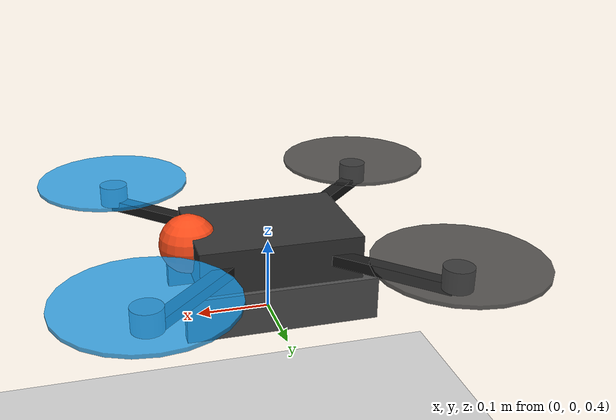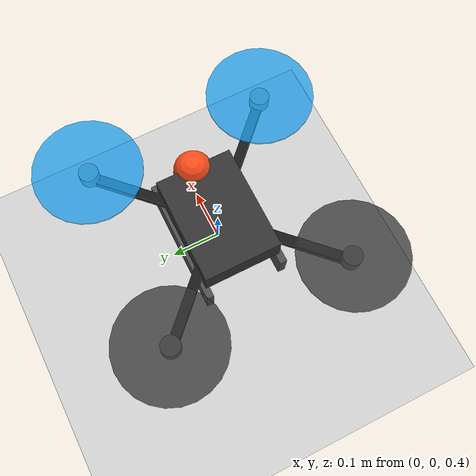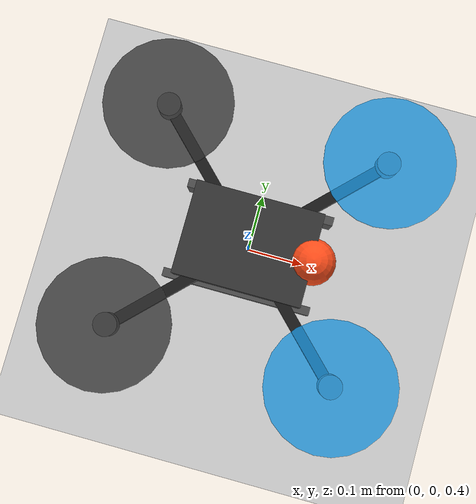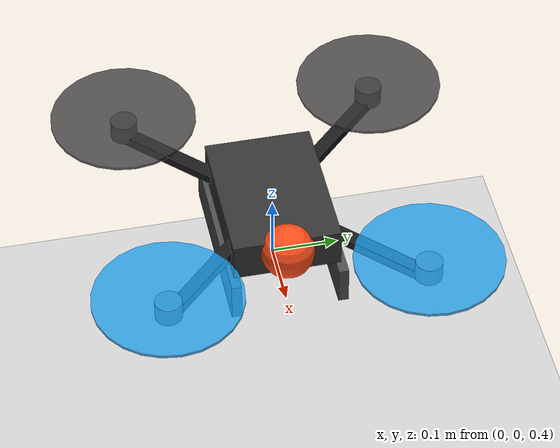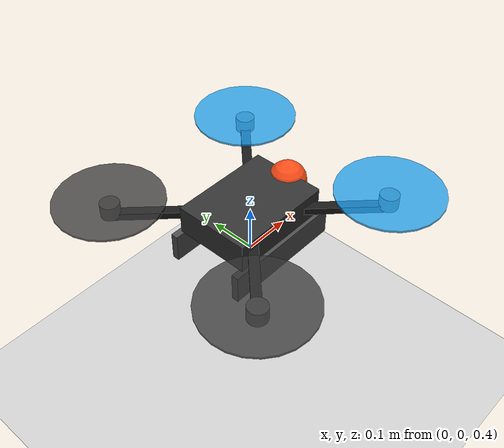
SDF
<?xml version="1.0" ?>
<sdf version="1.10">
  <world name="drone_world">

    <plugin filename="gz-sim-physics-system" name="gz::sim::systems::Physics"/>
    <plugin filename="gz-sim-user-commands-system" name="gz::sim::systems::UserCommands"/>
    <plugin filename="gz-sim-scene-broadcaster-system" name="gz::sim::systems::SceneBroadcaster"/>

    <light type="directional" name="sun">
      <cast_shadows>true</cast_shadows>
      <pose>0 0 10 0 0 0</pose>
      <diffuse>0.8 0.8 0.8 1</diffuse>
      <specular>0.2 0.2 0.2 1</specular>
      <direction>-0.5 0.1 -0.9</direction>
    </light>

    <model name="ground_plane">
      <static>true</static>
      <link name="link">
        <collision name="collision">
          <geometry><plane><normal>0 0 1</normal><size>100 100</size></plane></geometry>
        </collision>
        <visual name="visual">
          <geometry><plane><normal>0 0 1</normal><size>100 100</size></plane></geometry>
          <material><ambient>0.8 0.8 0.8 1</ambient><diffuse>0.8 0.8 0.8 1</diffuse></material>
        </visual>
      </link>
    </model>

    <!-- 사실적인 디테일의 쿼드콥터 드론 모델 -->
    <model name="quadcopter">
      <pose>0 0 0.5 0 0 0</pose>

      <link name="base_link">
        <gravity>false</gravity>
        <inertial>
          <mass>1.0</mass>
          <inertia>
            <ixx>0.01</ixx><ixy>0</ixy><ixz>0</ixz>
            <iyy>0.01</iyy><iyz>0</iyz>
            <izz>0.02</izz>
          </inertia>
        </inertial>

        <!-- 1. 중앙 몸체 -->
        <visual name="body">
          <pose>0 0 0 0 0 0</pose>
          <geometry><box><size>0.22 0.16 0.06</size></box></geometry>
          <material><ambient>0.15 0.15 0.15 1</ambient><diffuse>0.2 0.2 0.2 1</diffuse></material>
        </visual>
        <collision name="collision">
          <geometry><box><size>0.45 0.45 0.15</size></box></geometry>
        </collision>

        <!-- 2. 전방 주황색 노즈/카메라 (앞방향 표시) -->
        <visual name="head">
          <pose>0.11 0 0.01 0 0 0</pose>
          <geometry><sphere><radius>0.04</radius></sphere></geometry>
          <material><ambient>0.9 0.2 0.1 1</ambient><diffuse>1.0 0.3 0.1 1</diffuse></material>
        </visual>

        <!-- 3. X자 드론 프레임 암 -->
        <visual name="arm_fr">
          <pose>0.11 -0.11 0 0 0 -0.785</pose>
          <geometry><box><size>0.22 0.02 0.015</size></box></geometry>
          <material><ambient>0.1 0.1 0.1 1</ambient><diffuse>0.1 0.1 0.1 1</diffuse></material>
        </visual>
        <visual name="arm_fl">
          <pose>0.11 0.11 0 0 0 0.785</pose>
          <geometry><box><size>0.22 0.02 0.015</size></box></geometry>
          <material><ambient>0.1 0.1 0.1 1</ambient><diffuse>0.1 0.1 0.1 1</diffuse></material>
        </visual>
        <visual name="arm_rr">
          <pose>-0.11 -0.11 0 0 0 0.785</pose>
          <geometry><box><size>0.22 0.02 0.015</size></box></geometry>
          <material><ambient>0.1 0.1 0.1 1</ambient><diffuse>0.1 0.1 0.1 1</diffuse></material>
        </visual>
        <visual name="arm_rl">
          <pose>-0.11 0.11 0 0 0 -0.785</pose>
          <geometry><box><size>0.22 0.02 0.015</size></box></geometry>
          <material><ambient>0.1 0.1 0.1 1</ambient><diffuse>0.1 0.1 0.1 1</diffuse></material>
        </visual>

        <!-- 4. 모터 4개 -->
        <visual name="m0">
          <pose>0.19 -0.19 0.015 0 0 0</pose>
          <geometry><cylinder><radius>0.02</radius><length>0.03</length></cylinder></geometry>
          <material><ambient>0.4 0.4 0.4 1</ambient><diffuse>0.5 0.5 0.5 1</diffuse></material>
        </visual>
        <visual name="m1">
          <pose>0.19 0.19 0.015 0 0 0</pose>
          <geometry><cylinder><radius>0.02</radius><length>0.03</length></cylinder></geometry>
          <material><ambient>0.4 0.4 0.4 1</ambient><diffuse>0.5 0.5 0.5 1</diffuse></material>
        </visual>
        <visual name="m2">
          <pose>-0.19 -0.19 0.015 0 0 0</pose>
          <geometry><cylinder><radius>0.02</radius><length>0.03</length></cylinder></geometry>
          <material><ambient>0.4 0.4 0.4 1</ambient><diffuse>0.5 0.5 0.5 1</diffuse></material>
        </visual>
        <visual name="m3">
          <pose>-0.19 0.19 0.015 0 0 0</pose>
          <geometry><cylinder><radius>0.02</radius><length>0.03</length></cylinder></geometry>
          <material><ambient>0.4 0.4 0.4 1</ambient><diffuse>0.5 0.5 0.5 1</diffuse></material>
        </visual>

        <!-- 5. 프로펠러 4개 (전방: 파란색, 후방: 검은색) -->
        <visual name="p0">
          <pose>0.19 -0.19 0.035 0 0 0</pose>
          <geometry><cylinder><radius>0.11</radius><length>0.005</length></cylinder></geometry>
          <material><ambient>0.1 0.6 0.9 0.8</ambient><diffuse>0.1 0.6 0.9 0.8</diffuse></material>
        </visual>
        <visual name="p1">
          <pose>0.19 0.19 0.035 0 0 0</pose>
          <geometry><cylinder><radius>0.11</radius><length>0.005</length></cylinder></geometry>
          <material><ambient>0.1 0.6 0.9 0.8</ambient><diffuse>0.1 0.6 0.9 0.8</diffuse></material>
        </visual>
        <visual name="p2">
          <pose>-0.19 -0.19 0.035 0 0 0</pose>
          <geometry><cylinder><radius>0.11</radius><length>0.005</length></cylinder></geometry>
          <material><ambient>0.1 0.1 0.1 0.8</ambient><diffuse>0.2 0.2 0.2 0.8</diffuse></material>
        </visual>
        <visual name="p3">
          <pose>-0.19 0.19 0.035 0 0 0</pose>
          <geometry><cylinder><radius>0.11</radius><length>0.005</length></cylinder></geometry>
          <material><ambient>0.1 0.1 0.1 0.8</ambient><diffuse>0.2 0.2 0.2 0.8</diffuse></material>
        </visual>

        <!-- 6. 착륙 랜딩 다리 2개 -->
        <visual name="skid_l">
          <pose>0 0.08 -0.06 0 0 0</pose>
          <geometry><box><size>0.26 0.015 0.06</size></box></geometry>
          <material><ambient>0.2 0.2 0.2 1</ambient><diffuse>0.3 0.3 0.3 1</diffuse></material>
        </visual>
        <visual name="skid_r">
          <pose>0 -0.08 -0.06 0 0 0</pose>
          <geometry><box><size>0.26 0.015 0.06</size></box></geometry>
          <material><ambient>0.2 0.2 0.2 1</ambient><diffuse>0.3 0.3 0.3 1</diffuse></material>
        </visual>

      </link>

      <!-- 키보드 제어 플러그인 -->
      <plugin filename="gz-sim-velocity-control-system" name="gz::sim::systems::VelocityControl">
        <topic>/cmd_vel</topic>
      </plugin>

    </model>

  </world>
</sdf>
